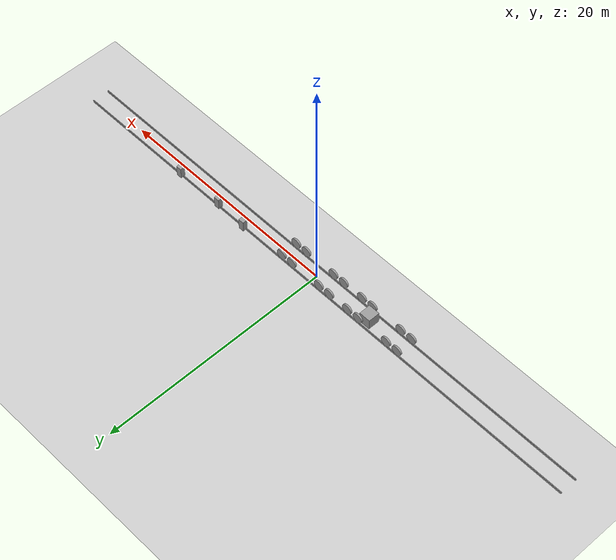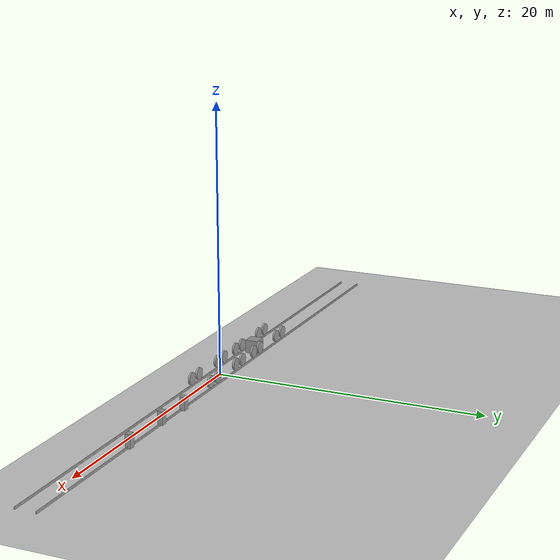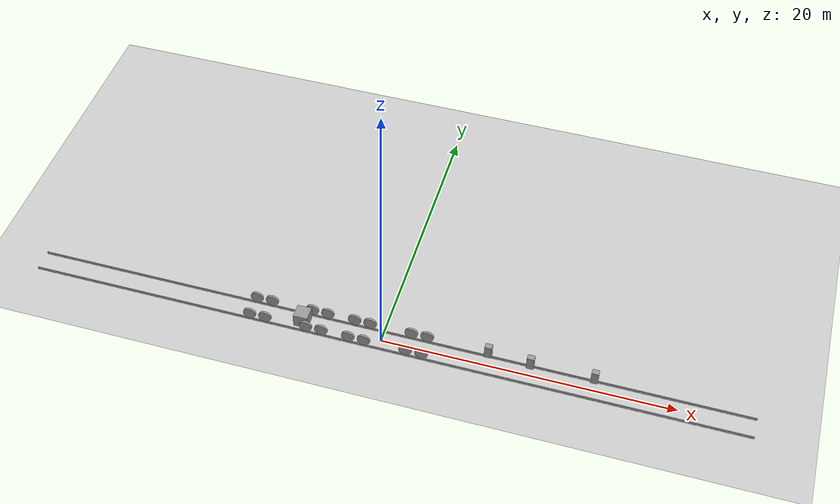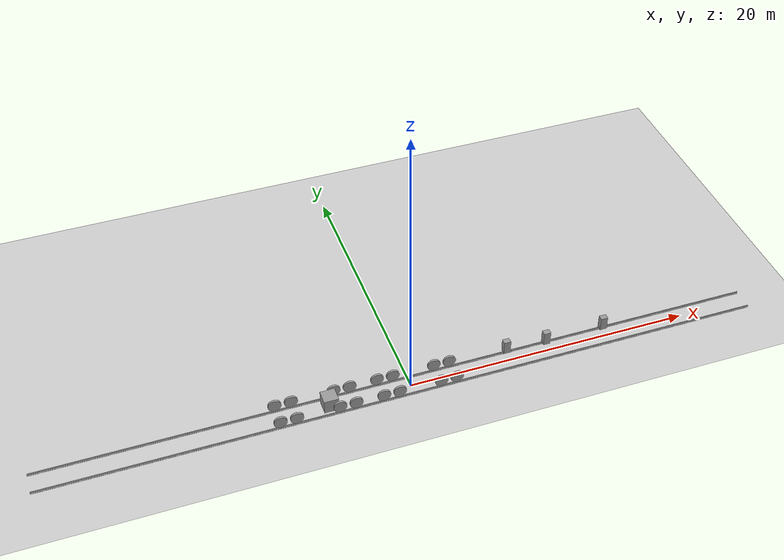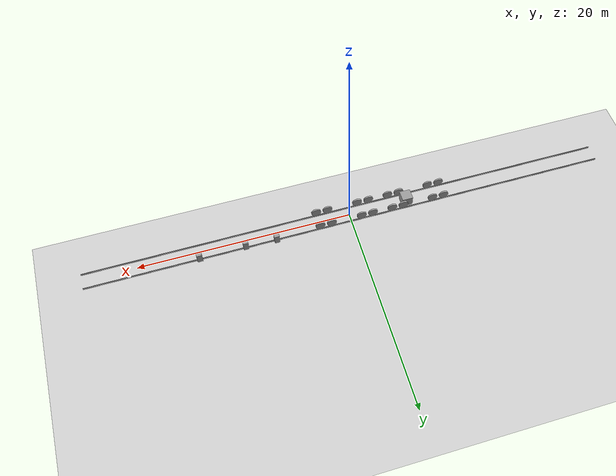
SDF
<sdf version="1.7">
 <world name="default">
  <light name="sun" type="directional">
   <pose>0 0 10 0 -0 0</pose>
   <diffuse>0.8 0.8 0.8 1</diffuse>
   <specular>0.2 0.2 0.2 1</specular>
   <attenuation>
    <range>1000</range>
    <constant>0.9</constant>
    <linear>0.01</linear>
    <quadratic>0.001</quadratic>
   </attenuation>
   <direction>-0.5 0.1 -0.9</direction>
   <spot><inner_angle>0</inner_angle><outer_angle>0</outer_angle><falloff>0</falloff></spot>
  </light>
  <model name="ground_plane">
   <static>1</static>
   <link name="link">
    <collision name="collision">
     <geometry><plane><normal>0 0 1</normal><size>100 100</size></plane></geometry>
     <surface>
      <contact><collide_bitmask>65535</collide_bitmask></contact>
      <friction><ode><mu>100</mu><mu2>50</mu2></ode></friction>
     </surface>
    </collision>
    <visual name="visual">
     <cast_shadows>0</cast_shadows>
     <geometry><plane><normal>0 0 1</normal><size>100 100</size></plane></geometry>
     <material>
      <script><uri>file://media/materials/scripts/gazebo.material</uri><name>Gazebo/Grey</name></script>
     </material>
    </visual>
   </link>
  </model>
  <gravity>0 0 -9.8</gravity>
  <magnetic_field>6e-06 2.3e-05 -4.2e-05</magnetic_field>
  <atmosphere type="adiabatic"/>
  <physics type="ode">
   <max_step_size>0.001</max_step_size>
   <real_time_factor>1</real_time_factor>
   <real_time_update_rate>1000</real_time_update_rate>
  </physics>
  <scene><ambient>0.4 0.4 0.4 1</ambient><background>0.7 0.7 0.7 1</background><shadows>1</shadows></scene>
  <spherical_coordinates>
   <surface_model>EARTH_WGS84</surface_model>
   <latitude_deg>0</latitude_deg>
   <longitude_deg>0</longitude_deg>
   <elevation>0</elevation>
   <heading_deg>0</heading_deg>
  </spherical_coordinates>
  <model name="single_track_model">
   <link name="link_0">
    <inertial>
     <mass>7800</mass>
     <inertia><ixx>1300</ixx><ixy>0</ixy><ixz>0</ixz><iyy>1300</iyy><iyz>0</iyz><izz>1300</izz></inertia>
    </inertial>
    <visual name="visual">
     <pose>0 0 0 1.5708 -0 1.5708</pose>
     <geometry>
      <mesh><uri>model://single_track_model/meshes/track.stl</uri><scale>0.001 0.001 1</scale></mesh>
     </geometry>
     <material>
      <lighting>1</lighting>
      <script><uri>file://media/materials/scripts/gazebo.material</uri><name>Gazebo/Grey</name></script>
      <shader type="pixel"><normal_map>__default__</normal_map></shader>
      <ambient>0.3 0.3 0.3 1</ambient>
      <diffuse>0.7 0.7 0.7 1</diffuse>
      <specular>0.01 0.01 0.01 1</specular>
      <emissive>0 0 0 1</emissive>
     </material>
    </visual>
    <collision name="collision">
     <pose>0 0 0 1.5708 -0 1.5708</pose>
     <geometry>
      <mesh><uri>model://single_track_model/meshes/track.stl</uri><scale>0.001 0.001 1</scale></mesh>
     </geometry>
     <surface>
      <friction>
       <ode><mu>1</mu><mu2>1</mu2><fdir1>0 0 0</fdir1><slip1>0</slip1><slip2>0</slip2></ode>
       <torsional>
        <coefficient>1</coefficient>
        <patch_radius>0</patch_radius>
        <surface_radius>0</surface_radius>
        <use_patch_radius>1</use_patch_radius>
        <ode><slip>0</slip></ode>
       </torsional>
      </friction>
      <bounce><restitution_coefficient>0</restitution_coefficient><threshold>1e+06</threshold></bounce>
      <contact>
       <collide_without_contact>0</collide_without_contact>
       <collide_without_contact_bitmask>1</collide_without_contact_bitmask>
       <collide_bitmask>1</collide_bitmask>
       <ode>
        <soft_cfm>0</soft_cfm>
        <soft_erp>0.2</soft_erp>
        <kp>1e+13</kp>
        <kd>1</kd>
        <max_vel>0.01</max_vel>
        <min_depth>0</min_depth>
       </ode>
       <bullet>
        <split_impulse>1</split_impulse>
        <split_impulse_penetration_threshold>-0.01</split_impulse_penetration_threshold>
        <soft_cfm>0</soft_cfm>
        <soft_erp>0.2</soft_erp>
        <kp>1e+13</kp>
        <kd>1</kd>
       </bullet>
      </contact>
     </surface>
    </collision>
   </link>
   <static>1</static>
   <pose>0 0.75 0 0 -0 0</pose>
  </model>
  <model name="single_track_model_0">
   <link name="link_0">
    <inertial>
     <mass>7800</mass>
     <inertia><ixx>1300</ixx><ixy>0</ixy><ixz>0</ixz><iyy>1300</iyy><iyz>0</iyz><izz>1300</izz></inertia>
    </inertial>
    <visual name="visual">
     <pose>0 0 0 1.5708 -0 1.5708</pose>
     <geometry>
      <mesh><uri>model://single_track_model/meshes/track.stl</uri><scale>0.001 0.001 1</scale></mesh>
     </geometry>
     <material>
      <lighting>1</lighting>
      <script><uri>file://media/materials/scripts/gazebo.material</uri><name>Gazebo/Grey</name></script>
      <shader type="pixel"><normal_map>__default__</normal_map></shader>
      <ambient>0.3 0.3 0.3 1</ambient>
      <diffuse>0.7 0.7 0.7 1</diffuse>
      <specular>0.01 0.01 0.01 1</specular>
      <emissive>0 0 0 1</emissive>
     </material>
    </visual>
    <collision name="collision">
     <pose>0 0 0 1.5708 -0 1.5708</pose>
     <geometry>
      <mesh><uri>model://single_track_model/meshes/track.stl</uri><scale>0.001 0.001 1</scale></mesh>
     </geometry>
     <surface>
      <friction>
       <ode><mu>1</mu><mu2>1</mu2><fdir1>0 0 0</fdir1><slip1>0</slip1><slip2>0</slip2></ode>
       <torsional>
        <coefficient>1</coefficient>
        <patch_radius>0</patch_radius>
        <surface_radius>0</surface_radius>
        <use_patch_radius>1</use_patch_radius>
        <ode><slip>0</slip></ode>
       </torsional>
      </friction>
      <bounce><restitution_coefficient>0</restitution_coefficient><threshold>1e+06</threshold></bounce>
      <contact>
       <collide_without_contact>0</collide_without_contact>
       <collide_without_contact_bitmask>1</collide_without_contact_bitmask>
       <collide_bitmask>1</collide_bitmask>
       <ode>
        <soft_cfm>0</soft_cfm>
        <soft_erp>0.2</soft_erp>
        <kp>1e+13</kp>
        <kd>1</kd>
        <max_vel>0.01</max_vel>
        <min_depth>0</min_depth>
       </ode>
       <bullet>
        <split_impulse>1</split_impulse>
        <split_impulse_penetration_threshold>-0.01</split_impulse_penetration_threshold>
        <soft_cfm>0</soft_cfm>
        <soft_erp>0.2</soft_erp>
        <kp>1e+13</kp>
        <kd>1</kd>
       </bullet>
      </contact>
     </surface>
    </collision>
   </link>
   <static>1</static>
   <pose>0 -0.75 0 0 -0 0</pose>
  </model>
  <model name="train_wheels">
   <link name="link">
    <inertial>
     <mass>1</mass>
     <inertia><ixx>0.145833</ixx><ixy>0</ixy><ixz>0</ixz><iyy>0.145833</iyy><iyz>0</iyz><izz>0.125</izz></inertia>
    </inertial>
    <pose>3 0.75 0.6 0 -0 0</pose>
    <visual name="visual">
     <geometry><cylinder><radius>0.45</radius><length>0.15</length></cylinder></geometry>
     <material>
      <script><name>Gazebo/Grey</name><uri>file://media/materials/scripts/gazebo.material</uri></script>
      <shader type="pixel"><normal_map>__default__</normal_map></shader>
      <ambient>0.3 0.3 0.3 1</ambient>
      <diffuse>0.7 0.7 0.7 1</diffuse>
      <specular>0.01 0.01 0.01 1</specular>
      <emissive>0 0 0 1</emissive>
     </material>
     <pose>0 0 0 1.5708 -0 0</pose>
    </visual>
    <collision name="collision">
     <geometry><cylinder><radius>0.45</radius><length>0.15</length></cylinder></geometry>
     <pose>0 0 0 1.5708 -0 0</pose>
    </collision>
   </link>
   <link name="link_clone">
    <inertial>
     <mass>1</mass>
     <inertia><ixx>0.145833</ixx><ixy>0</ixy><ixz>0</ixz><iyy>0.145833</iyy><iyz>0</iyz><izz>0.125</izz></inertia>
    </inertial>
    <pose>1.9 0.75 0.6 0 -0 0</pose>
    <visual name="visual">
     <geometry><cylinder><radius>0.45</radius><length>0.15</length></cylinder></geometry>
     <material>
      <script><name>Gazebo/Grey</name><uri>file://media/materials/scripts/gazebo.material</uri></script>
      <shader type="pixel"><normal_map>__default__</normal_map></shader>
      <ambient>0.3 0.3 0.3 1</ambient>
      <diffuse>0.7 0.7 0.7 1</diffuse>
      <specular>0.01 0.01 0.01 1</specular>
      <emissive>0 0 0 1</emissive>
     </material>
     <pose>0 0 0 1.5708 -0 0</pose>
    </visual>
    <collision name="collision">
     <geometry><cylinder><radius>0.45</radius><length>0.15</length></cylinder></geometry>
     <pose>0 0 0 1.5708 -0 0</pose>
    </collision>
   </link>
   <link name="link_clone_0">
    <inertial>
     <mass>1</mass>
     <inertia><ixx>0.145833</ixx><ixy>0</ixy><ixz>0</ixz><iyy>0.145833</iyy><iyz>0</iyz><izz>0.125</izz></inertia>
    </inertial>
    <pose>3 -0.75 0.6 0 -0 0</pose>
    <visual name="visual">
     <geometry><cylinder><radius>0.45</radius><length>0.15</length></cylinder></geometry>
     <material>
      <script><name>Gazebo/Grey</name><uri>file://media/materials/scripts/gazebo.material</uri></script>
      <shader type="pixel"><normal_map>__default__</normal_map></shader>
      <ambient>0.3 0.3 0.3 1</ambient>
      <diffuse>0.7 0.7 0.7 1</diffuse>
      <specular>0.01 0.01 0.01 1</specular>
      <emissive>0 0 0 1</emissive>
     </material>
     <pose>0 0 0 1.5708 -0 0</pose>
    </visual>
    <collision name="collision">
     <geometry><cylinder><radius>0.45</radius><length>0.15</length></cylinder></geometry>
     <pose>0 0 0 1.5708 -0 0</pose>
    </collision>
   </link>
   <link name="link_clone_0_clone">
    <inertial>
     <mass>1</mass>
     <inertia><ixx>0.145833</ixx><ixy>0</ixy><ixz>0</ixz><iyy>0.145833</iyy><iyz>0</iyz><izz>0.125</izz></inertia>
    </inertial>
    <pose>1.9 -0.75 0.6 0 -0 0</pose>
    <visual name="visual">
     <geometry><cylinder><radius>0.45</radius><length>0.15</length></cylinder></geometry>
     <material>
      <script><name>Gazebo/Grey</name><uri>file://media/materials/scripts/gazebo.material</uri></script>
      <shader type="pixel"><normal_map>__default__</normal_map></shader>
      <ambient>0.3 0.3 0.3 1</ambient>
      <diffuse>0.7 0.7 0.7 1</diffuse>
      <specular>0.01 0.01 0.01 1</specular>
      <emissive>0 0 0 1</emissive>
     </material>
     <pose>0 0 0 1.5708 -0 0</pose>
    </visual>
    <collision name="collision">
     <geometry><cylinder><radius>0.45</radius><length>0.15</length></cylinder></geometry>
     <pose>0 0 0 1.5708 -0 0</pose>
    </collision>
   </link>
   <link name="link_clone_0_clone_clone">
    <inertial>
     <mass>1</mass>
     <inertia><ixx>0.145833</ixx><ixy>0</ixy><ixz>0</ixz><iyy>0.145833</iyy><iyz>0</iyz><izz>0.125</izz></inertia>
    </inertial>
    <pose>-1 -0.75 0.6 0 -0 0</pose>
    <visual name="visual">
     <geometry><cylinder><radius>0.45</radius><length>0.15</length></cylinder></geometry>
     <material>
      <script><name>Gazebo/Grey</name><uri>file://media/materials/scripts/gazebo.material</uri></script>
      <shader type="pixel"><normal_map>__default__</normal_map></shader>
      <ambient>0.3 0.3 0.3 1</ambient>
      <diffuse>0.7 0.7 0.7 1</diffuse>
      <specular>0.01 0.01 0.01 1</specular>
      <emissive>0 0 0 1</emissive>
     </material>
     <pose>0 0 0 1.5708 -0 0</pose>
    </visual>
    <collision name="collision">
     <geometry><cylinder><radius>0.45</radius><length>0.15</length></cylinder></geometry>
     <pose>0 0 0 1.5708 -0 0</pose>
    </collision>
   </link>
   <link name="link_clone_0_clone_clone_clone">
    <inertial>
     <mass>1</mass>
     <inertia><ixx>0.145833</ixx><ixy>0</ixy><ixz>0</ixz><iyy>0.145833</iyy><iyz>0</iyz><izz>0.125</izz></inertia>
    </inertial>
    <pose>-2.1 -0.75 0.6 0 -0 0</pose>
    <visual name="visual">
     <geometry><cylinder><radius>0.45</radius><length>0.15</length></cylinder></geometry>
     <material>
      <script><name>Gazebo/Grey</name><uri>file://media/materials/scripts/gazebo.material</uri></script>
      <shader type="pixel"><normal_map>__default__</normal_map></shader>
      <ambient>0.3 0.3 0.3 1</ambient>
      <diffuse>0.7 0.7 0.7 1</diffuse>
      <specular>0.01 0.01 0.01 1</specular>
      <emissive>0 0 0 1</emissive>
     </material>
     <pose>0 0 0 1.5708 -0 0</pose>
    </visual>
    <collision name="collision">
     <geometry><cylinder><radius>0.45</radius><length>0.15</length></cylinder></geometry>
     <pose>0 0 0 1.5708 -0 0</pose>
    </collision>
   </link>
   <link name="link_clone_clone">
    <inertial>
     <mass>1</mass>
     <inertia><ixx>0.145833</ixx><ixy>0</ixy><ixz>0</ixz><iyy>0.145833</iyy><iyz>0</iyz><izz>0.125</izz></inertia>
    </inertial>
    <pose>-1 0.75 0.6 0 -0 0</pose>
    <visual name="visual">
     <geometry><cylinder><radius>0.45</radius><length>0.15</length></cylinder></geometry>
     <material>
      <script><name>Gazebo/Grey</name><uri>file://media/materials/scripts/gazebo.material</uri></script>
      <shader type="pixel"><normal_map>__default__</normal_map></shader>
      <ambient>0.3 0.3 0.3 1</ambient>
      <diffuse>0.7 0.7 0.7 1</diffuse>
      <specular>0.01 0.01 0.01 1</specular>
      <emissive>0 0 0 1</emissive>
     </material>
     <pose>0 0 0 1.5708 -0 0</pose>
    </visual>
    <collision name="collision">
     <geometry><cylinder><radius>0.45</radius><length>0.15</length></cylinder></geometry>
     <pose>0 0 0 1.5708 -0 0</pose>
    </collision>
   </link>
   <link name="link_clone_clone_clone">
    <inertial>
     <mass>1</mass>
     <inertia><ixx>0.145833</ixx><ixy>0</ixy><ixz>0</ixz><iyy>0.145833</iyy><iyz>0</iyz><izz>0.125</izz></inertia>
    </inertial>
    <pose>-2.1 0.75 0.6 0 -0 0</pose>
    <visual name="visual">
     <geometry><cylinder><radius>0.45</radius><length>0.15</length></cylinder></geometry>
     <material>
      <script><name>Gazebo/Grey</name><uri>file://media/materials/scripts/gazebo.material</uri></script>
      <shader type="pixel"><normal_map>__default__</normal_map></shader>
      <ambient>0.3 0.3 0.3 1</ambient>
      <diffuse>0.7 0.7 0.7 1</diffuse>
      <specular>0.01 0.01 0.01 1</specular>
      <emissive>0 0 0 1</emissive>
     </material>
     <pose>0 0 0 1.5708 -0 0</pose>
    </visual>
    <collision name="collision">
     <geometry><cylinder><radius>0.45</radius><length>0.15</length></cylinder></geometry>
     <pose>0 0 0 1.5708 -0 0</pose>
    </collision>
   </link>
   <static>1</static>
  </model>
  <model name="train_wheels_0">
   <link name="link">
    <inertial>
     <mass>1</mass>
     <inertia><ixx>0.145833</ixx><ixy>0</ixy><ixz>0</ixz><iyy>0.145833</iyy><iyz>0</iyz><izz>0.125</izz></inertia>
    </inertial>
    <pose>3 0.75 0.6 0 -0 0</pose>
    <visual name="visual">
     <geometry><cylinder><radius>0.45</radius><length>0.15</length></cylinder></geometry>
     <material>
      <script><name>Gazebo/Grey</name><uri>file://media/materials/scripts/gazebo.material</uri></script>
      <shader type="pixel"><normal_map>__default__</normal_map></shader>
      <ambient>0.3 0.3 0.3 1</ambient>
      <diffuse>0.7 0.7 0.7 1</diffuse>
      <specular>0.01 0.01 0.01 1</specular>
      <emissive>0 0 0 1</emissive>
     </material>
     <pose>0 0 0 1.5708 -0 0</pose>
    </visual>
    <collision name="collision">
     <geometry><cylinder><radius>0.45</radius><length>0.15</length></cylinder></geometry>
     <pose>0 0 0 1.5708 -0 0</pose>
    </collision>
   </link>
   <link name="link_clone">
    <inertial>
     <mass>1</mass>
     <inertia><ixx>0.145833</ixx><ixy>0</ixy><ixz>0</ixz><iyy>0.145833</iyy><iyz>0</iyz><izz>0.125</izz></inertia>
    </inertial>
    <pose>1.9 0.75 0.6 0 -0 0</pose>
    <visual name="visual">
     <geometry><cylinder><radius>0.45</radius><length>0.15</length></cylinder></geometry>
     <material>
      <script><name>Gazebo/Grey</name><uri>file://media/materials/scripts/gazebo.material</uri></script>
      <shader type="pixel"><normal_map>__default__</normal_map></shader>
      <ambient>0.3 0.3 0.3 1</ambient>
      <diffuse>0.7 0.7 0.7 1</diffuse>
      <specular>0.01 0.01 0.01 1</specular>
      <emissive>0 0 0 1</emissive>
     </material>
     <pose>0 0 0 1.5708 -0 0</pose>
    </visual>
    <collision name="collision">
     <geometry><cylinder><radius>0.45</radius><length>0.15</length></cylinder></geometry>
     <pose>0 0 0 1.5708 -0 0</pose>
    </collision>
   </link>
   <link name="link_clone_0">
    <inertial>
     <mass>1</mass>
     <inertia><ixx>0.145833</ixx><ixy>0</ixy><ixz>0</ixz><iyy>0.145833</iyy><iyz>0</iyz><izz>0.125</izz></inertia>
    </inertial>
    <pose>3 -0.75 0.6 0 -0 0</pose>
    <visual name="visual">
     <geometry><cylinder><radius>0.45</radius><length>0.15</length></cylinder></geometry>
     <material>
      <script><name>Gazebo/Grey</name><uri>file://media/materials/scripts/gazebo.material</uri></script>
      <shader type="pixel"><normal_map>__default__</normal_map></shader>
      <ambient>0.3 0.3 0.3 1</ambient>
      <diffuse>0.7 0.7 0.7 1</diffuse>
      <specular>0.01 0.01 0.01 1</specular>
      <emissive>0 0 0 1</emissive>
     </material>
     <pose>0 0 0 1.5708 -0 0</pose>
    </visual>
    <collision name="collision">
     <geometry><cylinder><radius>0.45</radius><length>0.15</length></cylinder></geometry>
     <pose>0 0 0 1.5708 -0 0</pose>
    </collision>
   </link>
   <link name="link_clone_0_clone">
    <inertial>
     <mass>1</mass>
     <inertia><ixx>0.145833</ixx><ixy>0</ixy><ixz>0</ixz><iyy>0.145833</iyy><iyz>0</iyz><izz>0.125</izz></inertia>
    </inertial>
    <pose>1.9 -0.75 0.6 0 -0 0</pose>
    <visual name="visual">
     <geometry><cylinder><radius>0.45</radius><length>0.15</length></cylinder></geometry>
     <material>
      <script><name>Gazebo/Grey</name><uri>file://media/materials/scripts/gazebo.material</uri></script>
      <shader type="pixel"><normal_map>__default__</normal_map></shader>
      <ambient>0.3 0.3 0.3 1</ambient>
      <diffuse>0.7 0.7 0.7 1</diffuse>
      <specular>0.01 0.01 0.01 1</specular>
      <emissive>0 0 0 1</emissive>
     </material>
     <pose>0 0 0 1.5708 -0 0</pose>
    </visual>
    <collision name="collision">
     <geometry><cylinder><radius>0.45</radius><length>0.15</length></cylinder></geometry>
     <pose>0 0 0 1.5708 -0 0</pose>
    </collision>
   </link>
   <link name="link_clone_0_clone_clone">
    <inertial>
     <mass>1</mass>
     <inertia><ixx>0.145833</ixx><ixy>0</ixy><ixz>0</ixz><iyy>0.145833</iyy><iyz>0</iyz><izz>0.125</izz></inertia>
    </inertial>
    <pose>-1 -0.75 0.6 0 -0 0</pose>
    <visual name="visual">
     <geometry><cylinder><radius>0.45</radius><length>0.15</length></cylinder></geometry>
     <material>
      <script><name>Gazebo/Grey</name><uri>file://media/materials/scripts/gazebo.material</uri></script>
      <shader type="pixel"><normal_map>__default__</normal_map></shader>
      <ambient>0.3 0.3 0.3 1</ambient>
      <diffuse>0.7 0.7 0.7 1</diffuse>
      <specular>0.01 0.01 0.01 1</specular>
      <emissive>0 0 0 1</emissive>
     </material>
     <pose>0 0 0 1.5708 -0 0</pose>
    </visual>
    <collision name="collision">
     <geometry><cylinder><radius>0.45</radius><length>0.15</length></cylinder></geometry>
     <pose>0 0 0 1.5708 -0 0</pose>
    </collision>
   </link>
   <link name="link_clone_0_clone_clone_clone">
    <inertial>
     <mass>1</mass>
     <inertia><ixx>0.145833</ixx><ixy>0</ixy><ixz>0</ixz><iyy>0.145833</iyy><iyz>0</iyz><izz>0.125</izz></inertia>
    </inertial>
    <pose>-2.1 -0.75 0.6 0 -0 0</pose>
    <visual name="visual">
     <geometry><cylinder><radius>0.45</radius><length>0.15</length></cylinder></geometry>
     <material>
      <script><name>Gazebo/Grey</name><uri>file://media/materials/scripts/gazebo.material</uri></script>
      <shader type="pixel"><normal_map>__default__</normal_map></shader>
      <ambient>0.3 0.3 0.3 1</ambient>
      <diffuse>0.7 0.7 0.7 1</diffuse>
      <specular>0.01 0.01 0.01 1</specular>
      <emissive>0 0 0 1</emissive>
     </material>
     <pose>0 0 0 1.5708 -0 0</pose>
    </visual>
    <collision name="collision">
     <geometry><cylinder><radius>0.45</radius><length>0.15</length></cylinder></geometry>
     <pose>0 0 0 1.5708 -0 0</pose>
    </collision>
   </link>
   <link name="link_clone_clone">
    <inertial>
     <mass>1</mass>
     <inertia><ixx>0.145833</ixx><ixy>0</ixy><ixz>0</ixz><iyy>0.145833</iyy><iyz>0</iyz><izz>0.125</izz></inertia>
    </inertial>
    <pose>-1 0.75 0.6 0 -0 0</pose>
    <visual name="visual">
     <geometry><cylinder><radius>0.45</radius><length>0.15</length></cylinder></geometry>
     <material>
      <script><name>Gazebo/Grey</name><uri>file://media/materials/scripts/gazebo.material</uri></script>
      <shader type="pixel"><normal_map>__default__</normal_map></shader>
      <ambient>0.3 0.3 0.3 1</ambient>
      <diffuse>0.7 0.7 0.7 1</diffuse>
      <specular>0.01 0.01 0.01 1</specular>
      <emissive>0 0 0 1</emissive>
     </material>
     <pose>0 0 0 1.5708 -0 0</pose>
    </visual>
    <collision name="collision">
     <geometry><cylinder><radius>0.45</radius><length>0.15</length></cylinder></geometry>
     <pose>0 0 0 1.5708 -0 0</pose>
    </collision>
   </link>
   <link name="link_clone_clone_clone">
    <inertial>
     <mass>1</mass>
     <inertia><ixx>0.145833</ixx><ixy>0</ixy><ixz>0</ixz><iyy>0.145833</iyy><iyz>0</iyz><izz>0.125</izz></inertia>
    </inertial>
    <pose>-2.1 0.75 0.6 0 -0 0</pose>
    <visual name="visual">
     <geometry><cylinder><radius>0.45</radius><length>0.15</length></cylinder></geometry>
     <material>
      <script><name>Gazebo/Grey</name><uri>file://media/materials/scripts/gazebo.material</uri></script>
      <shader type="pixel"><normal_map>__default__</normal_map></shader>
      <ambient>0.3 0.3 0.3 1</ambient>
      <diffuse>0.7 0.7 0.7 1</diffuse>
      <specular>0.01 0.01 0.01 1</specular>
      <emissive>0 0 0 1</emissive>
     </material>
     <pose>0 0 0 1.5708 -0 0</pose>
    </visual>
    <collision name="collision">
     <geometry><cylinder><radius>0.45</radius><length>0.15</length></cylinder></geometry>
     <pose>0 0 0 1.5708 -0 0</pose>
    </collision>
   </link>
   <static>1</static>
   <pose>-7 0 0 0 -0 0</pose>
  </model>
  <model name="unit_box">
   <pose>-5.58589 0.053923 0.5 -0 -0 -0</pose>
   <link name="link">
    <inertial>
     <mass>1</mass>
     <inertia>
      <ixx>0.166667</ixx>
      <ixy>0</ixy>
      <ixz>0</ixz>
      <iyy>0.166667</iyy>
      <iyz>0</iyz>
      <izz>0.166667</izz>
     </inertia>
    </inertial>
    <collision name="collision"><geometry><box><size>1 1 1</size></box></geometry></collision>
    <visual name="visual">
     <geometry><box><size>1 1 1</size></box></geometry>
     <material>
      <script><name>Gazebo/Grey</name><uri>file://media/materials/scripts/gazebo.material</uri></script>
     </material>
    </visual>
   </link>
   <static>1</static>
  </model>
  <model name="unit_box_0">
   <pose>7.19468 0.853475 0.5 0 -0 0</pose>
   <link name="link">
    <inertial>
     <mass>1</mass>
     <inertia>
      <ixx>0.166667</ixx>
      <ixy>0</ixy>
      <ixz>0</ixz>
      <iyy>0.166667</iyy>
      <iyz>0</iyz>
      <izz>0.166667</izz>
     </inertia>
    </inertial>
    <visual name="visual">
     <geometry><box><size>0.489585 0.390654 1</size></box></geometry>
     <material>
      <script><name>Gazebo/Grey</name><uri>file://media/materials/scripts/gazebo.material</uri></script>
     </material>
    </visual>
   </link>
   <static>1</static>
  </model>
  <model name="unit_box_0_clone">
   <pose>10.0922 0.742385 0.5 0 -0 0</pose>
   <link name="link">
    <inertial>
     <mass>1</mass>
     <inertia>
      <ixx>0.166667</ixx>
      <ixy>0</ixy>
      <ixz>0</ixz>
      <iyy>0.166667</iyy>
      <iyz>0</iyz>
      <izz>0.166667</izz>
     </inertia>
    </inertial>
    <visual name="visual">
     <geometry><box><size>0.489585 0.390654 1</size></box></geometry>
     <material>
      <script><name>Gazebo/Grey</name><uri>file://media/materials/scripts/gazebo.material</uri></script>
     </material>
    </visual>
   </link>
   <static>1</static>
  </model>
  <model name="unit_box_0_clone_0">
   <pose>14.3935 0.782818 0.5 0 -0 0</pose>
   <link name="link">
    <inertial>
     <mass>1</mass>
     <inertia>
      <ixx>0.166667</ixx>
      <ixy>0</ixy>
      <ixz>0</ixz>
      <iyy>0.166667</iyy>
      <iyz>0</iyz>
      <izz>0.166667</izz>
     </inertia>
    </inertial>
    <visual name="visual">
     <geometry><box><size>0.489585 0.390654 1</size></box></geometry>
     <material>
      <script><name>Gazebo/Grey</name><uri>file://media/materials/scripts/gazebo.material</uri></script>
     </material>
    </visual>
   </link>
   <static>1</static>
  </model>
 </world>
</sdf>
